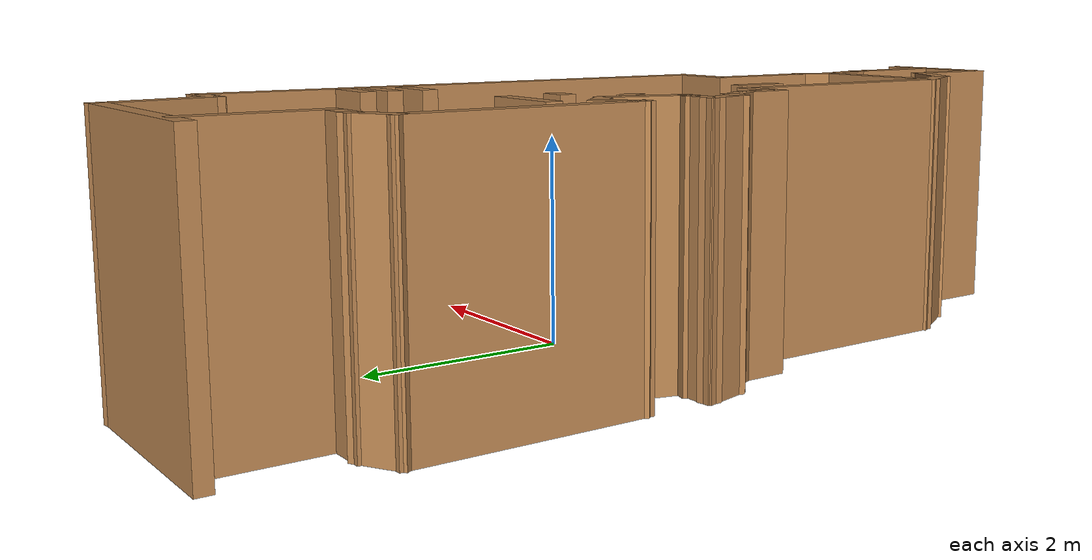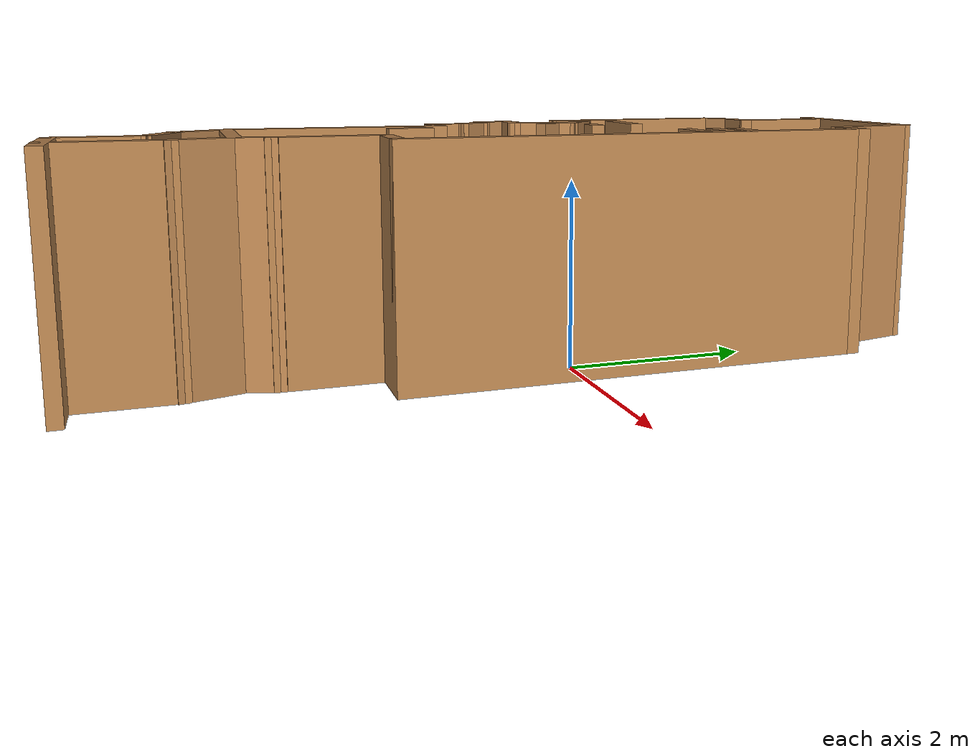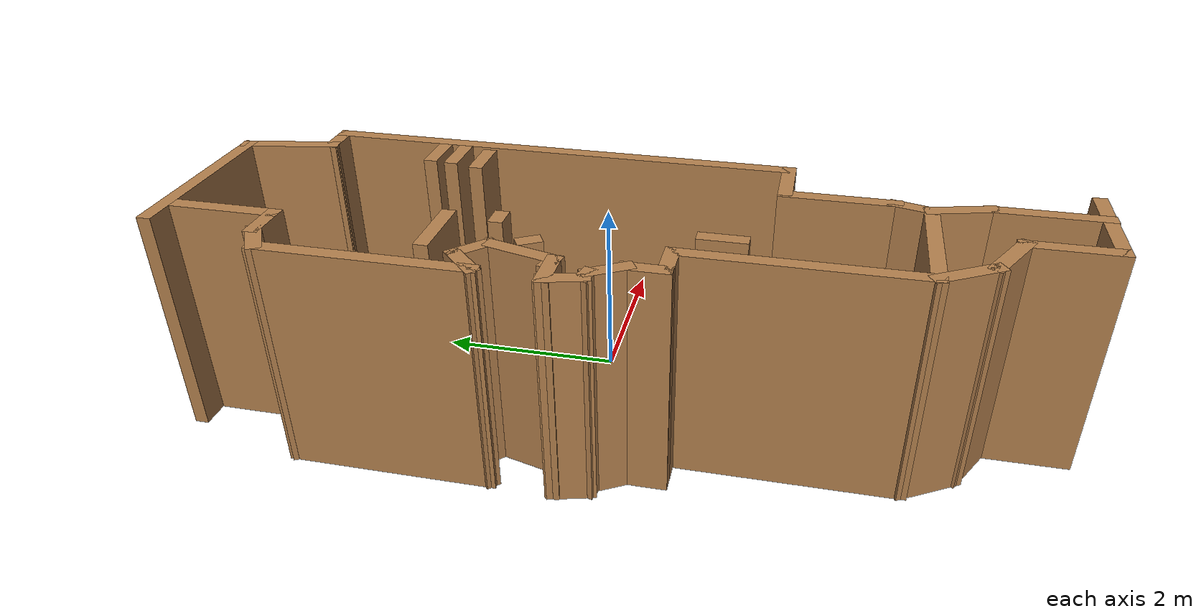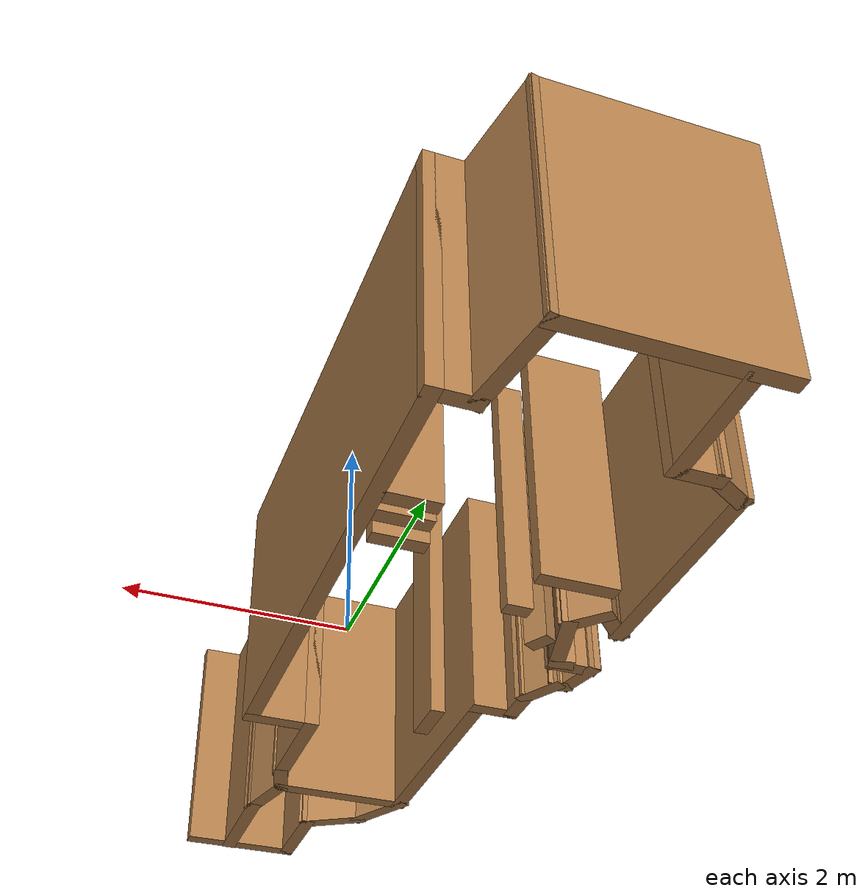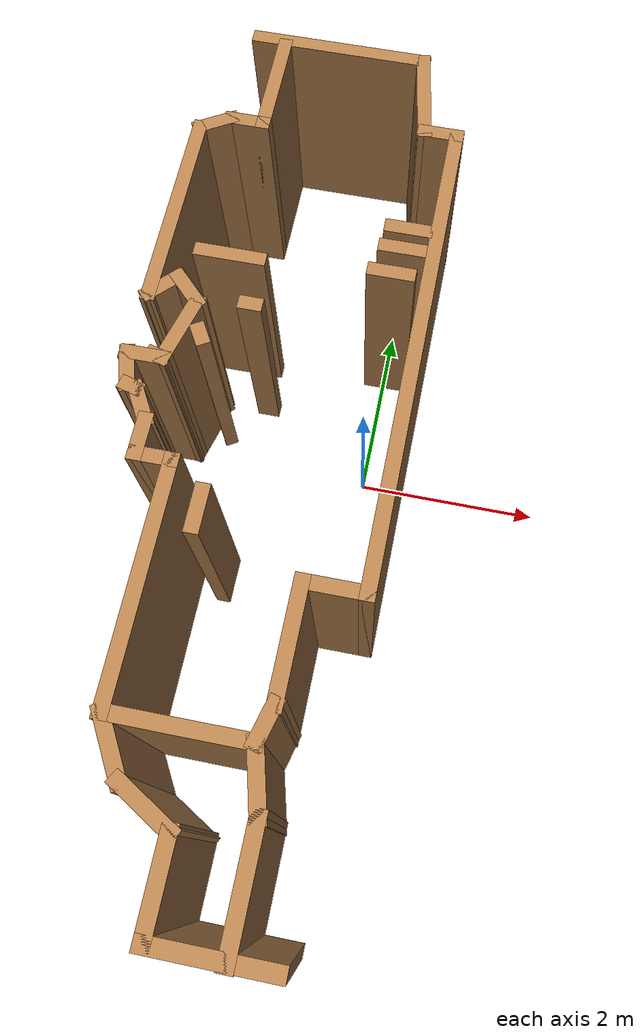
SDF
<?xml version='1.0'?>
<sdf version='1.6'>
  <model name='map_26'>
    <pose frame=''>-0.987585 -0.427824 0 0 -0 0</pose>
    <link name='Wall_0'>
      <collision name='Wall_0_Collision'>
        <geometry>
          <box>
            <size>2 0.15 2.5</size>
          </box>
        </geometry>
        <pose frame=''>0 0 1.25 0 -0 0</pose>
      </collision>
      <visual name='Wall_0_Visual'>
        <pose frame=''>0 0 1.25 0 -0 0</pose>
        <geometry>
          <box>
            <size>2 0.15 2.5</size>
          </box>
        </geometry>
        <material>
          <script>
            <uri>file://media/materials/scripts/gazebo.material</uri>
            <name>Gazebo/Wood</name>
          </script>
          <ambient>1 1 1 1</ambient>
        </material>
        <meta>
          <layer>0</layer>
        </meta>
      </visual>
      <pose frame=''>-0.059299 4.57153 0 0 -0 3.14159</pose>
    </link>
    <link name='Wall_14'>
      <collision name='Wall_14_Collision'>
        <geometry>
          <box>
            <size>0.5 0.15 2.5</size>
          </box>
        </geometry>
        <pose frame=''>0 0 1.25 0 -0 0</pose>
      </collision>
      <visual name='Wall_14_Visual'>
        <pose frame=''>0 0 1.25 0 -0 0</pose>
        <geometry>
          <box>
            <size>0.5 0.15 2.5</size>
          </box>
        </geometry>
        <material>
          <script>
            <uri>file://media/materials/scripts/gazebo.material</uri>
            <name>Gazebo/Wood</name>
          </script>
          <ambient>1 1 1 1</ambient>
        </material>
        <meta>
          <layer>0</layer>
        </meta>
      </visual>
      <pose frame=''>-1.21241 1.25993 0 0 -0 0.785398</pose>
    </link>
    <link name='Wall_15'>
      <collision name='Wall_15_Collision'>
        <geometry>
          <box>
            <size>0.5 0.15 2.5</size>
          </box>
        </geometry>
        <pose frame=''>0 0 1.25 0 -0 0</pose>
      </collision>
      <visual name='Wall_15_Visual'>
        <pose frame=''>0 0 1.25 0 -0 0</pose>
        <geometry>
          <box>
            <size>0.5 0.15 2.5</size>
          </box>
        </geometry>
        <material>
          <script>
            <uri>file://media/materials/scripts/gazebo.material</uri>
            <name>Gazebo/Wood</name>
          </script>
          <ambient>1 1 1 1</ambient>
        </material>
        <meta>
          <layer>0</layer>
        </meta>
      </visual>
      <pose frame=''>-0.964922 1.25993 0 0 -0 -0.785398</pose>
    </link>
    <link name='Wall_16'>
      <collision name='Wall_16_Collision'>
        <geometry>
          <box>
            <size>0.846046 0.15 2.5</size>
          </box>
        </geometry>
        <pose frame=''>0 0 1.25 0 -0 0</pose>
      </collision>
      <visual name='Wall_16_Visual'>
        <pose frame=''>0 0 1.25 0 -0 0</pose>
        <geometry>
          <box>
            <size>0.846046 0.15 2.5</size>
          </box>
        </geometry>
        <material>
          <script>
            <uri>file://media/materials/scripts/gazebo.material</uri>
            <name>Gazebo/Wood</name>
          </script>
          <ambient>1 1 1 1</ambient>
        </material>
        <meta>
          <layer>0</layer>
        </meta>
      </visual>
      <pose frame=''>-0.929567 0.799579 0 0 -0 -1.82758</pose>
    </link>
    <link name='Wall_19'>
      <collision name='Wall_19_Collision'>
        <geometry>
          <box>
            <size>0.5 0.15 2.5</size>
          </box>
        </geometry>
        <pose frame=''>0 0 1.25 0 -0 0</pose>
      </collision>
      <visual name='Wall_19_Visual'>
        <pose frame=''>0 0 1.25 0 -0 0</pose>
        <geometry>
          <box>
            <size>0.5 0.15 2.5</size>
          </box>
        </geometry>
        <material>
          <script>
            <uri>file://media/materials/scripts/gazebo.material</uri>
            <name>Gazebo/Wood</name>
          </script>
          <ambient>1 1 1 1</ambient>
        </material>
        <meta>
          <layer>0</layer>
        </meta>
      </visual>
      <pose frame=''>-1.19295 0.462967 0 0 -0 3.14159</pose>
    </link>
    <link name='Wall_2'>
      <collision name='Wall_2_Collision'>
        <geometry>
          <box>
            <size>1.25 0.15 2.5</size>
          </box>
        </geometry>
        <pose frame=''>0 0 1.25 0 -0 0</pose>
      </collision>
      <visual name='Wall_2_Visual'>
        <pose frame=''>0 0 1.25 0 -0 0</pose>
        <geometry>
          <box>
            <size>1.25 0.15 2.5</size>
          </box>
        </geometry>
        <material>
          <script>
            <uri>file://media/materials/scripts/gazebo.material</uri>
            <name>Gazebo/Wood</name>
          </script>
          <ambient>1 1 1 1</ambient>
        </material>
        <meta>
          <layer>0</layer>
        </meta>
      </visual>
      <pose frame=''>-0.683044 3.96119 0 0 -0 -1.5708</pose>
    </link>
    <link name='Wall_20'>
      <collision name='Wall_20_Collision'>
        <geometry>
          <box>
            <size>0.5 0.15 2.5</size>
          </box>
        </geometry>
        <pose frame=''>0 0 1.25 0 -0 0</pose>
      </collision>
      <visual name='Wall_20_Visual'>
        <pose frame=''>0 0 1.25 0 -0 0</pose>
        <geometry>
          <box>
            <size>0.5 0.15 2.5</size>
          </box>
        </geometry>
        <material>
          <script>
            <uri>file://media/materials/scripts/gazebo.material</uri>
            <name>Gazebo/Wood</name>
          </script>
          <ambient>1 1 1 1</ambient>
        </material>
        <meta>
          <layer>0</layer>
        </meta>
      </visual>
      <pose frame=''>-1.32266 0.29393 0 0 -0 -1.309</pose>
    </link>
    <link name='Wall_21'>
      <collision name='Wall_21_Collision'>
        <geometry>
          <box>
            <size>0.25 0.15 2.5</size>
          </box>
        </geometry>
        <pose frame=''>0 0 1.25 0 -0 0</pose>
      </collision>
      <visual name='Wall_21_Visual'>
        <pose frame=''>0 0 1.25 0 -0 0</pose>
        <geometry>
          <box>
            <size>0.25 0.15 2.5</size>
          </box>
        </geometry>
        <material>
          <script>
            <uri>file://media/materials/scripts/gazebo.material</uri>
            <name>Gazebo/Wood</name>
          </script>
          <ambient>1 1 1 1</ambient>
        </material>
        <meta>
          <layer>0</layer>
        </meta>
      </visual>
      <pose frame=''>-1.22907 0.111952 0 0 -0 -0.261799</pose>
    </link>
    <link name='Wall_22'>
      <collision name='Wall_22_Collision'>
        <geometry>
          <box>
            <size>0.5 0.15 2.5</size>
          </box>
        </geometry>
        <pose frame=''>0 0 1.25 0 -0 0</pose>
      </collision>
      <visual name='Wall_22_Visual'>
        <pose frame=''>0 0 1.25 0 -0 0</pose>
        <geometry>
          <box>
            <size>0.5 0.15 2.5</size>
          </box>
        </geometry>
        <material>
          <script>
            <uri>file://media/materials/scripts/gazebo.material</uri>
            <name>Gazebo/Wood</name>
          </script>
          <ambient>1 1 1 1</ambient>
        </material>
        <meta>
          <layer>0</layer>
        </meta>
      </visual>
      <pose frame=''>-1.09328 -0.052543 0 0 -0 -1.0472</pose>
    </link>
    <link name='Wall_23'>
      <collision name='Wall_23_Collision'>
        <geometry>
          <box>
            <size>0.5 0.15 2.5</size>
          </box>
        </geometry>
        <pose frame=''>0 0 1.25 0 -0 0</pose>
      </collision>
      <visual name='Wall_23_Visual'>
        <pose frame=''>0 0 1.25 0 -0 0</pose>
        <geometry>
          <box>
            <size>0.5 0.15 2.5</size>
          </box>
        </geometry>
        <material>
          <script>
            <uri>file://media/materials/scripts/gazebo.material</uri>
            <name>Gazebo/Wood</name>
          </script>
          <ambient>1 1 1 1</ambient>
        </material>
        <meta>
          <layer>0</layer>
        </meta>
      </visual>
      <pose frame=''>-1.00578 -0.379098 0 0 -0 -1.5708</pose>
    </link>
    <link name='Wall_24'>
      <collision name='Wall_24_Collision'>
        <geometry>
          <box>
            <size>0.5 0.15 2.5</size>
          </box>
        </geometry>
        <pose frame=''>0 0 1.25 0 -0 0</pose>
      </collision>
      <visual name='Wall_24_Visual'>
        <pose frame=''>0 0 1.25 0 -0 0</pose>
        <geometry>
          <box>
            <size>0.5 0.15 2.5</size>
          </box>
        </geometry>
        <material>
          <script>
            <uri>file://media/materials/scripts/gazebo.material</uri>
            <name>Gazebo/Wood</name>
          </script>
          <ambient>1 1 1 1</ambient>
        </material>
        <meta>
          <layer>0</layer>
        </meta>
      </visual>
      <pose frame=''>-0.830776 -0.554098 0 0 -0 0</pose>
    </link>
    <link name='Wall_25'>
      <collision name='Wall_25_Collision'>
        <geometry>
          <box>
            <size>2.5 0.15 2.5</size>
          </box>
        </geometry>
        <pose frame=''>0 0 1.25 0 -0 0</pose>
      </collision>
      <visual name='Wall_25_Visual'>
        <pose frame=''>0 0 1.25 0 -0 0</pose>
        <geometry>
          <box>
            <size>2.5 0.15 2.5</size>
          </box>
        </geometry>
        <material>
          <script>
            <uri>file://media/materials/scripts/gazebo.material</uri>
            <name>Gazebo/Wood</name>
          </script>
          <ambient>1 1 1 1</ambient>
        </material>
        <meta>
          <layer>0</layer>
        </meta>
      </visual>
      <pose frame=''>-0.655776 -1.7291 0 0 -0 -1.5708</pose>
    </link>
    <link name='Wall_26'>
      <collision name='Wall_26_Collision'>
        <geometry>
          <box>
            <size>1.5 0.15 2.5</size>
          </box>
        </geometry>
        <pose frame=''>0 0 1.25 0 -0 0</pose>
      </collision>
      <visual name='Wall_26_Visual'>
        <pose frame=''>0 0 1.25 0 -0 0</pose>
        <geometry>
          <box>
            <size>1.5 0.15 2.5</size>
          </box>
        </geometry>
        <material>
          <script>
            <uri>file://media/materials/scripts/gazebo.material</uri>
            <name>Gazebo/Wood</name>
          </script>
          <ambient>1 1 1 1</ambient>
        </material>
        <meta>
          <layer>0</layer>
        </meta>
      </visual>
      <pose frame=''>0.019224 -2.9041 0 0 -0 0</pose>
    </link>
    <link name='Wall_27'>
      <collision name='Wall_27_Collision'>
        <geometry>
          <box>
            <size>0.5 0.15 2.5</size>
          </box>
        </geometry>
        <pose frame=''>0 0 1.25 0 -0 0</pose>
      </collision>
      <visual name='Wall_27_Visual'>
        <pose frame=''>0 0 1.25 0 -0 0</pose>
        <geometry>
          <box>
            <size>0.5 0.15 2.5</size>
          </box>
        </geometry>
        <material>
          <script>
            <uri>file://media/materials/scripts/gazebo.material</uri>
            <name>Gazebo/Wood</name>
          </script>
          <ambient>1 1 1 1</ambient>
        </material>
        <meta>
          <layer>0</layer>
        </meta>
      </visual>
      <pose frame=''>0.739517 -2.73506 0 0 -0 1.309</pose>
    </link>
    <link name='Wall_28'>
      <collision name='Wall_28_Collision'>
        <geometry>
          <box>
            <size>1.25 0.15 2.5</size>
          </box>
        </geometry>
        <pose frame=''>0 0 1.25 0 -0 0</pose>
      </collision>
      <visual name='Wall_28_Visual'>
        <pose frame=''>0 0 1.25 0 -0 0</pose>
        <geometry>
          <box>
            <size>1.25 0.15 2.5</size>
          </box>
        </geometry>
        <material>
          <script>
            <uri>file://media/materials/scripts/gazebo.material</uri>
            <name>Gazebo/Wood</name>
          </script>
          <ambient>1 1 1 1</ambient>
        </material>
        <meta>
          <layer>0</layer>
        </meta>
      </visual>
      <pose frame=''>0.784811 -2.01602 0 0 -0 1.5708</pose>
    </link>
    <link name='Wall_3'>
      <collision name='Wall_3_Collision'>
        <geometry>
          <box>
            <size>0.5 0.15 2.5</size>
          </box>
        </geometry>
        <pose frame=''>0 0 1.25 0 -0 0</pose>
      </collision>
      <visual name='Wall_3_Visual'>
        <pose frame=''>0 0 1.25 0 -0 0</pose>
        <geometry>
          <box>
            <size>0.5 0.15 2.5</size>
          </box>
        </geometry>
        <material>
          <script>
            <uri>file://media/materials/scripts/gazebo.material</uri>
            <name>Gazebo/Wood</name>
          </script>
          <ambient>1 1 1 1</ambient>
        </material>
        <meta>
          <layer>0</layer>
        </meta>
      </visual>
      <pose frame=''>-0.858044 3.41119 0 0 -0 3.14159</pose>
    </link>
    <link name='Wall_33'>
      <collision name='Wall_33_Collision'>
        <geometry>
          <box>
            <size>0.75 0.15 2.5</size>
          </box>
        </geometry>
        <pose frame=''>0 0 1.25 0 -0 0</pose>
      </collision>
      <visual name='Wall_33_Visual'>
        <pose frame=''>0 0 1.25 0 -0 0</pose>
        <geometry>
          <box>
            <size>0.75 0.15 2.5</size>
          </box>
        </geometry>
        <material>
          <script>
            <uri>file://media/materials/scripts/gazebo.material</uri>
            <name>Gazebo/Wood</name>
          </script>
          <ambient>1 1 1 1</ambient>
        </material>
        <meta>
          <layer>0</layer>
        </meta>
      </visual>
      <pose frame=''>1.08481 -1.46602 0 0 -0 0</pose>
    </link>
    <link name='Wall_34'>
      <collision name='Wall_34_Collision'>
        <geometry>
          <box>
            <size>5.25 0.15 2.5</size>
          </box>
        </geometry>
        <pose frame=''>0 0 1.25 0 -0 0</pose>
      </collision>
      <visual name='Wall_34_Visual'>
        <pose frame=''>0 0 1.25 0 -0 0</pose>
        <geometry>
          <box>
            <size>5.25 0.15 2.5</size>
          </box>
        </geometry>
        <material>
          <script>
            <uri>file://media/materials/scripts/gazebo.material</uri>
            <name>Gazebo/Wood</name>
          </script>
          <ambient>1 1 1 1</ambient>
        </material>
        <meta>
          <layer>0</layer>
        </meta>
      </visual>
      <pose frame=''>1.38481 1.08398 0 0 -0 1.5708</pose>
    </link>
    <link name='Wall_35'>
      <collision name='Wall_35_Collision'>
        <geometry>
          <box>
            <size>0.5 0.15 2.5</size>
          </box>
        </geometry>
        <pose frame=''>0 0 1.25 0 -0 0</pose>
      </collision>
      <visual name='Wall_35_Visual'>
        <pose frame=''>0 0 1.25 0 -0 0</pose>
        <geometry>
          <box>
            <size>0.5 0.15 2.5</size>
          </box>
        </geometry>
        <material>
          <script>
            <uri>file://media/materials/scripts/gazebo.material</uri>
            <name>Gazebo/Wood</name>
          </script>
          <ambient>1 1 1 1</ambient>
        </material>
        <meta>
          <layer>0</layer>
        </meta>
      </visual>
      <pose frame=''>1.20981 3.63398 0 0 -0 3.14159</pose>
    </link>
    <link name='Wall_36'>
      <collision name='Wall_36_Collision'>
        <geometry>
          <box>
            <size>1.10268 0.15 2.5</size>
          </box>
        </geometry>
        <pose frame=''>0 0 1.25 0 -0 0</pose>
      </collision>
      <visual name='Wall_36_Visual'>
        <pose frame=''>0 0 1.25 0 -0 0</pose>
        <geometry>
          <box>
            <size>1.10268 0.15 2.5</size>
          </box>
        </geometry>
        <material>
          <script>
            <uri>file://media/materials/scripts/gazebo.material</uri>
            <name>Gazebo/Wood</name>
          </script>
          <ambient>1 1 1 1</ambient>
        </material>
        <meta>
          <layer>0</layer>
        </meta>
      </visual>
      <pose frame=''>0.950256 4.10275 0 0 -0 1.74925</pose>
    </link>
    <link name='Wall_39'>
      <collision name='Wall_39_Collision'>
        <geometry>
          <box>
            <size>0.75 0.15 2.5</size>
          </box>
        </geometry>
        <pose frame=''>0 0 1.25 0 -0 0</pose>
      </collision>
      <visual name='Wall_39_Visual'>
        <pose frame=''>0 0 1.25 0 -0 0</pose>
        <geometry>
          <box>
            <size>0.75 0.15 2.5</size>
          </box>
        </geometry>
        <material>
          <script>
            <uri>file://media/materials/scripts/gazebo.material</uri>
            <name>Gazebo/Wood</name>
          </script>
          <ambient>1 1 1 1</ambient>
        </material>
        <meta>
          <layer>0</layer>
        </meta>
      </visual>
      <pose frame=''>-0.505776 -3.16391 0 0 -0 -1.0472</pose>
    </link>
    <link name='Wall_4'>
      <collision name='Wall_4_Collision'>
        <geometry>
          <box>
            <size>0.5 0.15 2.5</size>
          </box>
        </geometry>
        <pose frame=''>0 0 1.25 0 -0 0</pose>
      </collision>
      <visual name='Wall_4_Visual'>
        <pose frame=''>0 0 1.25 0 -0 0</pose>
        <geometry>
          <box>
            <size>0.5 0.15 2.5</size>
          </box>
        </geometry>
        <material>
          <script>
            <uri>file://media/materials/scripts/gazebo.material</uri>
            <name>Gazebo/Wood</name>
          </script>
          <ambient>1 1 1 1</ambient>
        </material>
        <meta>
          <layer>0</layer>
        </meta>
      </visual>
      <pose frame=''>-1.1846 3.32369 0 0 -0 -2.61799</pose>
    </link>
    <link name='Wall_40'>
      <collision name='Wall_40_Collision'>
        <geometry>
          <box>
            <size>0.75 0.15 2.5</size>
          </box>
        </geometry>
        <pose frame=''>0 0 1.25 0 -0 0</pose>
      </collision>
      <visual name='Wall_40_Visual'>
        <pose frame=''>0 0 1.25 0 -0 0</pose>
        <geometry>
          <box>
            <size>0.75 0.15 2.5</size>
          </box>
        </geometry>
        <material>
          <script>
            <uri>file://media/materials/scripts/gazebo.material</uri>
            <name>Gazebo/Wood</name>
          </script>
          <ambient>1 1 1 1</ambient>
        </material>
        <meta>
          <layer>0</layer>
        </meta>
      </visual>
      <pose frame=''>-0.095968 -3.57371 0 0 -0 -0.523599</pose>
    </link>
    <link name='Wall_41'>
      <collision name='Wall_41_Collision'>
        <geometry>
          <box>
            <size>1 0.15 2.5</size>
          </box>
        </geometry>
        <pose frame=''>0 0 1.25 0 -0 0</pose>
      </collision>
      <visual name='Wall_41_Visual'>
        <pose frame=''>0 0 1.25 0 -0 0</pose>
        <geometry>
          <box>
            <size>1 0.15 2.5</size>
          </box>
        </geometry>
        <material>
          <script>
            <uri>file://media/materials/scripts/gazebo.material</uri>
            <name>Gazebo/Wood</name>
          </script>
          <ambient>1 1 1 1</ambient>
        </material>
        <meta>
          <layer>0</layer>
        </meta>
      </visual>
      <pose frame=''>0.163839 -4.14871 0 0 -0 -1.5708</pose>
    </link>
    <link name='Wall_42'>
      <collision name='Wall_42_Collision'>
        <geometry>
          <box>
            <size>1.25 0.15 2.5</size>
          </box>
        </geometry>
        <pose frame=''>0 0 1.25 0 -0 0</pose>
      </collision>
      <visual name='Wall_42_Visual'>
        <pose frame=''>0 0 1.25 0 -0 0</pose>
        <geometry>
          <box>
            <size>1.25 0.15 2.5</size>
          </box>
        </geometry>
        <material>
          <script>
            <uri>file://media/materials/scripts/gazebo.material</uri>
            <name>Gazebo/Wood</name>
          </script>
          <ambient>1 1 1 1</ambient>
        </material>
        <meta>
          <layer>0</layer>
        </meta>
      </visual>
      <pose frame=''>0.713839 -4.57371 0 0 -0 0</pose>
    </link>
    <link name='Wall_44'>
      <collision name='Wall_44_Collision'>
        <geometry>
          <box>
            <size>0.75 0.15 2.5</size>
          </box>
        </geometry>
        <pose frame=''>0 0 1.25 0 -0 0</pose>
      </collision>
      <visual name='Wall_44_Visual'>
        <pose frame=''>0 0 1.25 0 -0 0</pose>
        <geometry>
          <box>
            <size>0.75 0.15 2.5</size>
          </box>
        </geometry>
        <material>
          <script>
            <uri>file://media/materials/scripts/gazebo.material</uri>
            <name>Gazebo/Wood</name>
          </script>
          <ambient>1 1 1 1</ambient>
        </material>
        <meta>
          <layer>0</layer>
        </meta>
      </visual>
      <pose frame=''>0.77187 -3.19388 0 0 -0 -1.309</pose>
    </link>
    <link name='Wall_45'>
      <collision name='Wall_45_Collision'>
        <geometry>
          <box>
            <size>1.25 0.15 2.5</size>
          </box>
        </geometry>
        <pose frame=''>0 0 1.25 0 -0 0</pose>
      </collision>
      <visual name='Wall_45_Visual'>
        <pose frame=''>0 0 1.25 0 -0 0</pose>
        <geometry>
          <box>
            <size>1.25 0.15 2.5</size>
          </box>
        </geometry>
        <material>
          <script>
            <uri>file://media/materials/scripts/gazebo.material</uri>
            <name>Gazebo/Wood</name>
          </script>
          <ambient>1 1 1 1</ambient>
        </material>
        <meta>
          <layer>0</layer>
        </meta>
      </visual>
      <pose frame=''>0.849515 -4.03365 0 0 -0 -1.5708</pose>
    </link>
    <link name='Wall_47'>
      <collision name='Wall_47_Collision'>
        <geometry>
          <box>
            <size>0.5 0.15 2.5</size>
          </box>
        </geometry>
        <pose frame=''>0 0 1.25 0 -0 0</pose>
      </collision>
      <visual name='Wall_47_Visual'>
        <pose frame=''>0 0 1.25 0 -0 0</pose>
        <geometry>
          <box>
            <size>0.5 0.15 2.5</size>
          </box>
        </geometry>
        <material>
          <script>
            <uri>file://media/materials/scripts/gazebo.material</uri>
            <name>Gazebo/Wood</name>
          </script>
          <ambient>1 1 1 1</ambient>
        </material>
        <meta>
          <layer>0</layer>
        </meta>
      </visual>
      <pose frame=''>1.08093 2.37915 0 0 -0 0</pose>
    </link>
    <link name='Wall_5'>
      <collision name='Wall_5_Collision'>
        <geometry>
          <box>
            <size>2.25 0.15 2.5</size>
          </box>
        </geometry>
        <pose frame=''>0 0 1.25 0 -0 0</pose>
      </collision>
      <visual name='Wall_5_Visual'>
        <pose frame=''>0 0 1.25 0 -0 0</pose>
        <geometry>
          <box>
            <size>2.25 0.15 2.5</size>
          </box>
        </geometry>
        <material>
          <script>
            <uri>file://media/materials/scripts/gazebo.material</uri>
            <name>Gazebo/Wood</name>
          </script>
          <ambient>1 1 1 1</ambient>
        </material>
        <meta>
          <layer>0</layer>
        </meta>
      </visual>
      <pose frame=''>-1.33615 2.18619 0 0 -0 -1.5708</pose>
    </link>
    <link name='Wall_50'>
      <collision name='Wall_50_Collision'>
        <geometry>
          <box>
            <size>0.5 0.15 2.5</size>
          </box>
        </geometry>
        <pose frame=''>0 0 1.25 0 -0 0</pose>
      </collision>
      <visual name='Wall_50_Visual'>
        <pose frame=''>0 0 1.25 0 -0 0</pose>
        <geometry>
          <box>
            <size>0.5 0.15 2.5</size>
          </box>
        </geometry>
        <material>
          <script>
            <uri>file://media/materials/scripts/gazebo.material</uri>
            <name>Gazebo/Wood</name>
          </script>
          <ambient>1 1 1 1</ambient>
        </material>
        <meta>
          <layer>0</layer>
        </meta>
      </visual>
      <pose frame=''>1.06081 2.13779 0 0 -0 0</pose>
    </link>
    <link name='Wall_53'>
      <collision name='Wall_53_Collision'>
        <geometry>
          <box>
            <size>0.5 0.15 2.5</size>
          </box>
        </geometry>
        <pose frame=''>0 0 1.25 0 -0 0</pose>
      </collision>
      <visual name='Wall_53_Visual'>
        <pose frame=''>0 0 1.25 0 -0 0</pose>
        <geometry>
          <box>
            <size>0.5 0.15 2.5</size>
          </box>
        </geometry>
        <material>
          <script>
            <uri>file://media/materials/scripts/gazebo.material</uri>
            <name>Gazebo/Wood</name>
          </script>
          <ambient>1 1 1 1</ambient>
        </material>
        <meta>
          <layer>0</layer>
        </meta>
      </visual>
      <pose frame=''>1.00047 1.83608 0 0 -0 0</pose>
    </link>
    <link name='Wall_56'>
      <collision name='Wall_56_Collision'>
        <geometry>
          <box>
            <size>0.75 0.15 2.5</size>
          </box>
        </geometry>
        <pose frame=''>0 0 1.25 0 -0 0</pose>
      </collision>
      <visual name='Wall_56_Visual'>
        <pose frame=''>0 0 1.25 0 -0 0</pose>
        <geometry>
          <box>
            <size>0.75 0.15 2.5</size>
          </box>
        </geometry>
        <material>
          <script>
            <uri>file://media/materials/scripts/gazebo.material</uri>
            <name>Gazebo/Wood</name>
          </script>
          <ambient>1 1 1 1</ambient>
        </material>
        <meta>
          <layer>0</layer>
        </meta>
      </visual>
      <pose frame=''>-0.644521 1.73552 0 0 -0 0</pose>
    </link>
    <link name='Wall_58'>
      <collision name='Wall_58_Collision'>
        <geometry>
          <box>
            <size>0.5 0.15 2.5</size>
          </box>
        </geometry>
        <pose frame=''>0 0 1.25 0 -0 0</pose>
      </collision>
      <visual name='Wall_58_Visual'>
        <pose frame=''>0 0 1.25 0 -0 0</pose>
        <geometry>
          <box>
            <size>0.5 0.15 2.5</size>
          </box>
        </geometry>
        <material>
          <script>
            <uri>file://media/materials/scripts/gazebo.material</uri>
            <name>Gazebo/Wood</name>
          </script>
          <ambient>1 1 1 1</ambient>
        </material>
        <meta>
          <layer>0</layer>
        </meta>
      </visual>
      <pose frame=''>-0.300887 -0.973793 0 0 -0 -1.5708</pose>
    </link>
    <link name='Wall_61'>
      <collision name='Wall_61_Collision'>
        <geometry>
          <box>
            <size>0.25 0.15 2.5</size>
          </box>
        </geometry>
        <pose frame=''>0 0 1.25 0 -0 0</pose>
      </collision>
      <visual name='Wall_61_Visual'>
        <pose frame=''>0 0 1.25 0 -0 0</pose>
        <geometry>
          <box>
            <size>0.25 0.15 2.5</size>
          </box>
        </geometry>
        <material>
          <script>
            <uri>file://media/materials/scripts/gazebo.material</uri>
            <name>Gazebo/Wood</name>
          </script>
          <ambient>1 1 1 1</ambient>
        </material>
        <meta>
          <layer>0</layer>
        </meta>
      </visual>
      <pose frame=''>-0.310659 1.21256 0 0 -0 3.14159</pose>
    </link>
    <link name='Wall_63'>
      <collision name='Wall_63_Collision'>
        <geometry>
          <box>
            <size>0.25 0.15 2.5</size>
          </box>
        </geometry>
        <pose frame=''>0 0 1.25 0 -0 0</pose>
      </collision>
      <visual name='Wall_63_Visual'>
        <pose frame=''>0 0 1.25 0 -0 0</pose>
        <geometry>
          <box>
            <size>0.25 0.15 2.5</size>
          </box>
        </geometry>
        <material>
          <script>
            <uri>file://media/materials/scripts/gazebo.material</uri>
            <name>Gazebo/Wood</name>
          </script>
          <ambient>1 1 1 1</ambient>
        </material>
        <meta>
          <layer>0</layer>
        </meta>
      </visual>
      <pose frame=''>-0.718385 0.787106 0 0 -0 -1.0472</pose>
    </link>
    <link name='Wall_9'>
      <collision name='Wall_9_Collision'>
        <geometry>
          <box>
            <size>0.25 0.15 2.5</size>
          </box>
        </geometry>
        <pose frame=''>0 0 1.25 0 -0 0</pose>
      </collision>
      <visual name='Wall_9_Visual'>
        <pose frame=''>0 0 1.25 0 -0 0</pose>
        <geometry>
          <box>
            <size>0.25 0.15 2.5</size>
          </box>
        </geometry>
        <material>
          <script>
            <uri>file://media/materials/scripts/gazebo.material</uri>
            <name>Gazebo/Wood</name>
          </script>
          <ambient>1 1 1 1</ambient>
        </material>
        <meta>
          <layer>0</layer>
        </meta>
      </visual>
      <pose frame=''>-1.06625 0.475908 0 0 -0 2.87979</pose>
    </link>
    <static>1</static>
  </model>
</sdf>
